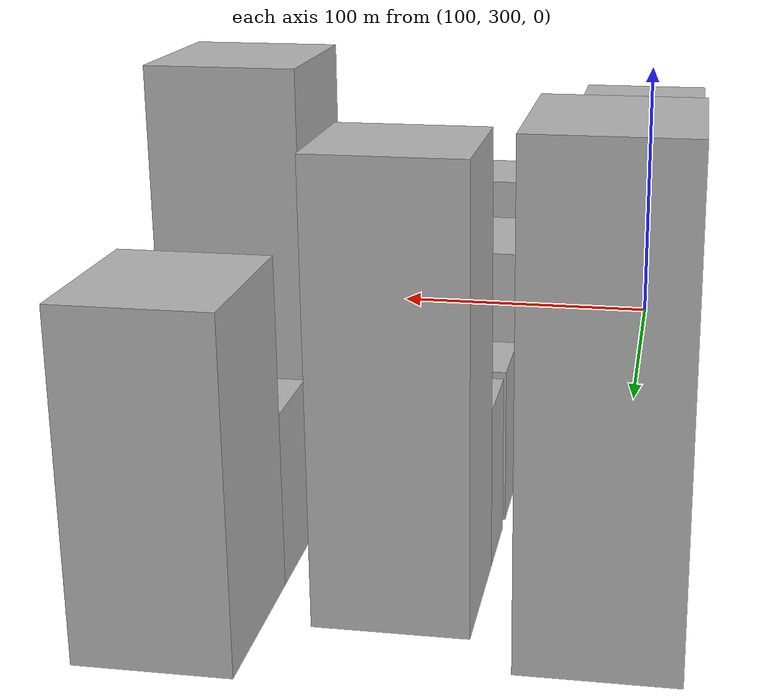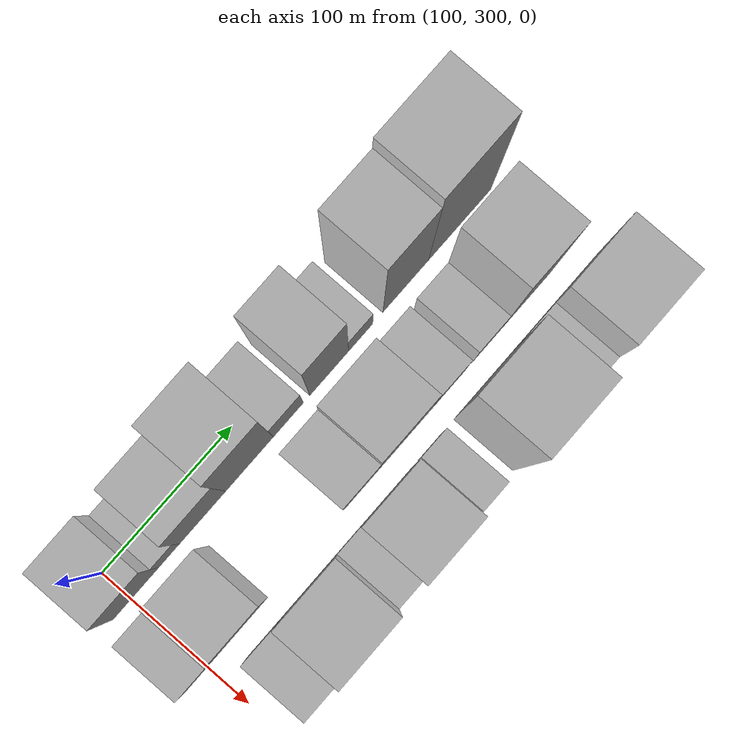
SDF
<sdf version="1.6">
 <world name="default">
  <model name="building_26">
   <static>1</static>
   <pose>100.0000 304.0262 0 0.000000 0.000000 0.000000</pose>
   <link name="link">
    <pose>0 0 31.50 0 0 0</pose>
    <collision name="collision"><geometry><box><size>40.0000 35.2212 63.0000</size></box></geometry></collision>
    <visual name="visual">
     <cast_shadows>0</cast_shadows>
     <geometry><box><size>40.0000 35.2212 63.0000</size></box></geometry>
     <material>
      <script>
       <uri>model://HANNAS_wall/materials/scripts</uri>
       <uri>model://HANNAS_wall/materials/textures</uri>
       <name>vrc/HANNAS_wall</name>
      </script>
     </material>
    </visual>
   </link>
  </model>
  <model name="building_27">
   <static>1</static>
   <pose>100.0000 329.5936 0 0.000000 0.000000 0.000000</pose>
   <link name="link">
    <pose>0 0 15.00 0 0 0</pose>
    <collision name="collision"><geometry><box><size>40.0000 15.9137 30.0000</size></box></geometry></collision>
    <visual name="visual">
     <cast_shadows>0</cast_shadows>
     <geometry><box><size>40.0000 15.9137 30.0000</size></box></geometry>
     <material>
      <script>
       <uri>model://HANNAS_wall/materials/scripts</uri>
       <uri>model://HANNAS_wall/materials/textures</uri>
       <name>vrc/HANNAS_wall</name>
      </script>
     </material>
    </visual>
   </link>
  </model>
  <model name="building_28">
   <static>1</static>
   <pose>100.0000 355.3646 0 0.000000 0.000000 0.000000</pose>
   <link name="link">
    <pose>0 0 34.50 0 0 0</pose>
    <collision name="collision"><geometry><box><size>40.0000 35.6282 69.0000</size></box></geometry></collision>
    <visual name="visual">
     <cast_shadows>0</cast_shadows>
     <geometry><box><size>40.0000 35.6282 69.0000</size></box></geometry>
     <material>
      <script>
       <uri>model://HANNAS_wall/materials/scripts</uri>
       <uri>model://HANNAS_wall/materials/textures</uri>
       <name>vrc/HANNAS_wall</name>
      </script>
     </material>
    </visual>
   </link>
  </model>
  <model name="building_29">
   <static>1</static>
   <pose>100.0000 391.6366 0 0.000000 0.000000 0.000000</pose>
   <link name="link">
    <pose>0 0 52.50 0 0 0</pose>
    <collision name="collision"><geometry><box><size>40.0000 36.9157 105.0000</size></box></geometry></collision>
    <visual name="visual">
     <cast_shadows>0</cast_shadows>
     <geometry><box><size>40.0000 36.9157 105.0000</size></box></geometry>
     <material>
      <script>
       <uri>model://HANNAS_wall/materials/scripts</uri>
       <uri>model://HANNAS_wall/materials/textures</uri>
       <name>vrc/HANNAS_wall</name>
      </script>
     </material>
    </visual>
   </link>
  </model>
  <model name="building_30">
   <static>1</static>
   <pose>100.0000 421.7339 0 0.000000 0.000000 0.000000</pose>
   <link name="link">
    <pose>0 0 21.00 0 0 0</pose>
    <collision name="collision"><geometry><box><size>40.0000 23.2790 42.0000</size></box></geometry></collision>
    <visual name="visual">
     <cast_shadows>0</cast_shadows>
     <geometry><box><size>40.0000 23.2790 42.0000</size></box></geometry>
     <material>
      <script>
       <uri>model://HANNAS_wall/materials/scripts</uri>
       <uri>model://HANNAS_wall/materials/textures</uri>
       <name>vrc/HANNAS_wall</name>
      </script>
     </material>
    </visual>
   </link>
  </model>
  <model name="building_31">
   <static>1</static>
   <pose>100.0000 453.5452 0 0.000000 0.000000 0.000000</pose>
   <link name="link">
    <pose>0 0 48.00 0 0 0</pose>
    <collision name="collision"><geometry><box><size>40.0000 30.3436 96.0000</size></box></geometry></collision>
    <visual name="visual">
     <cast_shadows>0</cast_shadows>
     <geometry><box><size>40.0000 30.3436 96.0000</size></box></geometry>
     <material>
      <script>
       <uri>model://HANNAS_wall/materials/scripts</uri>
       <uri>model://HANNAS_wall/materials/textures</uri>
       <name>vrc/HANNAS_wall</name>
      </script>
     </material>
    </visual>
   </link>
  </model>
  <model name="building_32">
   <static>1</static>
   <pose>100.0000 478.2213 0 0.000000 0.000000 0.000000</pose>
   <link name="link">
    <pose>0 0 16.50 0 0 0</pose>
    <collision name="collision"><geometry><box><size>40.0000 19.0085 33.0000</size></box></geometry></collision>
    <visual name="visual">
     <cast_shadows>0</cast_shadows>
     <geometry><box><size>40.0000 19.0085 33.0000</size></box></geometry>
     <material>
      <script>
       <uri>model://HANNAS_wall/materials/scripts</uri>
       <uri>model://HANNAS_wall/materials/textures</uri>
       <name>vrc/HANNAS_wall</name>
      </script>
     </material>
    </visual>
   </link>
  </model>
  <model name="building_33">
   <static>1</static>
   <pose>100.0000 513.7080 0 0.000000 0.000000 0.000000</pose>
   <link name="link">
    <pose>0 0 57.00 0 0 0</pose>
    <collision name="collision"><geometry><box><size>40.0000 35.9650 114.0000</size></box></geometry></collision>
    <visual name="visual">
     <cast_shadows>0</cast_shadows>
     <geometry><box><size>40.0000 35.9650 114.0000</size></box></geometry>
     <material>
      <script>
       <uri>model://HANNAS_wall/materials/scripts</uri>
       <uri>model://HANNAS_wall/materials/textures</uri>
       <name>vrc/HANNAS_wall</name>
      </script>
     </material>
    </visual>
   </link>
  </model>
  <model name="building_34">
   <static>1</static>
   <pose>100.0000 556.5723 0 0.000000 0.000000 0.000000</pose>
   <link name="link">
    <pose>0 0 64.50 0 0 0</pose>
    <collision name="collision"><geometry><box><size>40.0000 49.7636 129.0000</size></box></geometry></collision>
    <visual name="visual">
     <cast_shadows>0</cast_shadows>
     <geometry><box><size>40.0000 49.7636 129.0000</size></box></geometry>
     <material>
      <script>
       <uri>model://HANNAS_wall/materials/scripts</uri>
       <uri>model://HANNAS_wall/materials/textures</uri>
       <name>vrc/HANNAS_wall</name>
      </script>
     </material>
    </visual>
   </link>
  </model>
  <model name="building_56">
   <static>1</static>
   <pose>152.0000 296.9692 0 0.000000 0.000000 0.000000</pose>
   <link name="link">
    <pose>0 0 22.50 0 0 0</pose>
    <collision name="collision"><geometry><box><size>40.0000 24.1995 45.0000</size></box></geometry></collision>
    <visual name="visual">
     <cast_shadows>0</cast_shadows>
     <geometry><box><size>40.0000 24.1995 45.0000</size></box></geometry>
     <material>
      <script>
       <uri>model://HANNAS_wall/materials/scripts</uri>
       <uri>model://HANNAS_wall/materials/textures</uri>
       <name>vrc/HANNAS_wall</name>
      </script>
     </material>
    </visual>
   </link>
  </model>
  <model name="building_57">
   <static>1</static>
   <pose>152.0000 327.7760 0 0.000000 0.000000 0.000000</pose>
   <link name="link">
    <pose>0 0 31.50 0 0 0</pose>
    <collision name="collision"><geometry><box><size>40.0000 37.4141 63.0000</size></box></geometry></collision>
    <visual name="visual">
     <cast_shadows>0</cast_shadows>
     <geometry><box><size>40.0000 37.4141 63.0000</size></box></geometry>
     <material>
      <script>
       <uri>model://HANNAS_wall/materials/scripts</uri>
       <uri>model://HANNAS_wall/materials/textures</uri>
       <name>vrc/HANNAS_wall</name>
      </script>
     </material>
    </visual>
   </link>
  </model>
  <model name="building_58">
   <static>1</static>
   <pose>152.0000 419.4962 0 0.000000 0.000000 0.000000</pose>
   <link name="link">
    <pose>0 0 27.00 0 0 0</pose>
    <collision name="collision"><geometry><box><size>40.0000 28.0087 54.0000</size></box></geometry></collision>
    <visual name="visual">
     <cast_shadows>0</cast_shadows>
     <geometry><box><size>40.0000 28.0087 54.0000</size></box></geometry>
     <material>
      <script>
       <uri>model://HANNAS_wall/materials/scripts</uri>
       <uri>model://HANNAS_wall/materials/textures</uri>
       <name>vrc/HANNAS_wall</name>
      </script>
     </material>
    </visual>
   </link>
  </model>
  <model name="building_59">
   <static>1</static>
   <pose>152.0000 454.4222 0 0.000000 0.000000 0.000000</pose>
   <link name="link">
    <pose>0 0 36.00 0 0 0</pose>
    <collision name="collision"><geometry><box><size>40.0000 41.8433 72.0000</size></box></geometry></collision>
    <visual name="visual">
     <cast_shadows>0</cast_shadows>
     <geometry><box><size>40.0000 41.8433 72.0000</size></box></geometry>
     <material>
      <script>
       <uri>model://HANNAS_wall/materials/scripts</uri>
       <uri>model://HANNAS_wall/materials/textures</uri>
       <name>vrc/HANNAS_wall</name>
      </script>
     </material>
    </visual>
   </link>
  </model>
  <model name="building_60">
   <static>1</static>
   <pose>152.0000 488.0636 0 0.000000 0.000000 0.000000</pose>
   <link name="link">
    <pose>0 0 22.50 0 0 0</pose>
    <collision name="collision"><geometry><box><size>40.0000 25.4396 45.0000</size></box></geometry></collision>
    <visual name="visual">
     <cast_shadows>0</cast_shadows>
     <geometry><box><size>40.0000 25.4396 45.0000</size></box></geometry>
     <material>
      <script>
       <uri>model://HANNAS_wall/materials/scripts</uri>
       <uri>model://HANNAS_wall/materials/textures</uri>
       <name>vrc/HANNAS_wall</name>
      </script>
     </material>
    </visual>
   </link>
  </model>
  <model name="building_61">
   <static>1</static>
   <pose>152.0000 517.4692 0 0.000000 0.000000 0.000000</pose>
   <link name="link">
    <pose>0 0 22.50 0 0 0</pose>
    <collision name="collision"><geometry><box><size>40.0000 23.3714 45.0000</size></box></geometry></collision>
    <visual name="visual">
     <cast_shadows>0</cast_shadows>
     <geometry><box><size>40.0000 23.3714 45.0000</size></box></geometry>
     <material>
      <script>
       <uri>model://HANNAS_wall/materials/scripts</uri>
       <uri>model://HANNAS_wall/materials/textures</uri>
       <name>vrc/HANNAS_wall</name>
      </script>
     </material>
    </visual>
   </link>
  </model>
  <model name="building_62">
   <static>1</static>
   <pose>152.0000 548.2094 0 0.000000 0.000000 0.000000</pose>
   <link name="link">
    <pose>0 0 60.00 0 0 0</pose>
    <collision name="collision"><geometry><box><size>40.0000 38.1090 120.0000</size></box></geometry></collision>
    <visual name="visual">
     <cast_shadows>0</cast_shadows>
     <geometry><box><size>40.0000 38.1090 120.0000</size></box></geometry>
     <material>
      <script>
       <uri>model://HANNAS_wall/materials/scripts</uri>
       <uri>model://HANNAS_wall/materials/textures</uri>
       <name>vrc/HANNAS_wall</name>
      </script>
     </material>
    </visual>
   </link>
  </model>
  <model name="building_87">
   <static>1</static>
   <pose>204.0000 330.9870 0 0.000000 0.000000 0.000000</pose>
   <link name="link">
    <pose>0 0 24.00 0 0 0</pose>
    <collision name="collision"><geometry><box><size>40.0000 25.4345 48.0000</size></box></geometry></collision>
    <visual name="visual">
     <cast_shadows>0</cast_shadows>
     <geometry><box><size>40.0000 25.4345 48.0000</size></box></geometry>
     <material>
      <script>
       <uri>model://HANNAS_wall/materials/scripts</uri>
       <uri>model://HANNAS_wall/materials/textures</uri>
       <name>vrc/HANNAS_wall</name>
      </script>
     </material>
    </visual>
   </link>
  </model>
  <model name="building_88">
   <static>1</static>
   <pose>204.0000 365.5047 0 0.000000 0.000000 0.000000</pose>
   <link name="link">
    <pose>0 0 40.50 0 0 0</pose>
    <collision name="collision"><geometry><box><size>40.0000 43.6008 81.0000</size></box></geometry></collision>
    <visual name="visual">
     <cast_shadows>0</cast_shadows>
     <geometry><box><size>40.0000 43.6008 81.0000</size></box></geometry>
     <material>
      <script>
       <uri>model://HANNAS_wall/materials/scripts</uri>
       <uri>model://HANNAS_wall/materials/textures</uri>
       <name>vrc/HANNAS_wall</name>
      </script>
     </material>
    </visual>
   </link>
  </model>
  <model name="building_89">
   <static>1</static>
   <pose>204.0000 396.2415 0 0.000000 0.000000 0.000000</pose>
   <link name="link">
    <pose>0 0 16.50 0 0 0</pose>
    <collision name="collision"><geometry><box><size>40.0000 17.8728 33.0000</size></box></geometry></collision>
    <visual name="visual">
     <cast_shadows>0</cast_shadows>
     <geometry><box><size>40.0000 17.8728 33.0000</size></box></geometry>
     <material>
      <script>
       <uri>model://HANNAS_wall/materials/scripts</uri>
       <uri>model://HANNAS_wall/materials/textures</uri>
       <name>vrc/HANNAS_wall</name>
      </script>
     </material>
    </visual>
   </link>
  </model>
  <model name="building_90">
   <static>1</static>
   <pose>204.0000 425.8992 0 0.000000 0.000000 0.000000</pose>
   <link name="link">
    <pose>0 0 37.50 0 0 0</pose>
    <collision name="collision"><geometry><box><size>40.0000 41.4427 75.0000</size></box></geometry></collision>
    <visual name="visual">
     <cast_shadows>0</cast_shadows>
     <geometry><box><size>40.0000 41.4427 75.0000</size></box></geometry>
     <material>
      <script>
       <uri>model://HANNAS_wall/materials/scripts</uri>
       <uri>model://HANNAS_wall/materials/textures</uri>
       <name>vrc/HANNAS_wall</name>
      </script>
     </material>
    </visual>
   </link>
  </model>
  <model name="building_91">
   <static>1</static>
   <pose>204.0000 459.2046 0 0.000000 0.000000 0.000000</pose>
   <link name="link">
    <pose>0 0 18.00 0 0 0</pose>
    <collision name="collision"><geometry><box><size>40.0000 19.1681 36.0000</size></box></geometry></collision>
    <visual name="visual">
     <cast_shadows>0</cast_shadows>
     <geometry><box><size>40.0000 19.1681 36.0000</size></box></geometry>
     <material>
      <script>
       <uri>model://HANNAS_wall/materials/scripts</uri>
       <uri>model://HANNAS_wall/materials/textures</uri>
       <name>vrc/HANNAS_wall</name>
      </script>
     </material>
    </visual>
   </link>
  </model>
  <model name="building_92">
   <static>1</static>
   <pose>204.0000 500.1604 0 0.000000 0.000000 0.000000</pose>
   <link name="link">
    <pose>0 0 66.00 0 0 0</pose>
    <collision name="collision"><geometry><box><size>40.0000 44.7435 132.0000</size></box></geometry></collision>
    <visual name="visual">
     <cast_shadows>0</cast_shadows>
     <geometry><box><size>40.0000 44.7435 132.0000</size></box></geometry>
     <material>
      <script>
       <uri>model://HANNAS_wall/materials/scripts</uri>
       <uri>model://HANNAS_wall/materials/textures</uri>
       <name>vrc/HANNAS_wall</name>
      </script>
     </material>
    </visual>
   </link>
  </model>
  <model name="building_93">
   <static>1</static>
   <pose>204.0000 535.1479 0 0.000000 0.000000 0.000000</pose>
   <link name="link">
    <pose>0 0 24.00 0 0 0</pose>
    <collision name="collision"><geometry><box><size>40.0000 25.2316 48.0000</size></box></geometry></collision>
    <visual name="visual">
     <cast_shadows>0</cast_shadows>
     <geometry><box><size>40.0000 25.2316 48.0000</size></box></geometry>
     <material>
      <script>
       <uri>model://HANNAS_wall/materials/scripts</uri>
       <uri>model://HANNAS_wall/materials/textures</uri>
       <name>vrc/HANNAS_wall</name>
      </script>
     </material>
    </visual>
   </link>
  </model>
  <model name="building_94">
   <static>1</static>
   <pose>204.0000 570.4630 0 0.000000 0.000000 0.000000</pose>
   <link name="link">
    <pose>0 0 45.00 0 0 0</pose>
    <collision name="collision"><geometry><box><size>40.0000 45.3985 90.0000</size></box></geometry></collision>
    <visual name="visual">
     <cast_shadows>0</cast_shadows>
     <geometry><box><size>40.0000 45.3985 90.0000</size></box></geometry>
     <material>
      <script>
       <uri>model://HANNAS_wall/materials/scripts</uri>
       <uri>model://HANNAS_wall/materials/textures</uri>
       <name>vrc/HANNAS_wall</name>
      </script>
     </material>
    </visual>
   </link>
  </model>
 </world>
</sdf>
